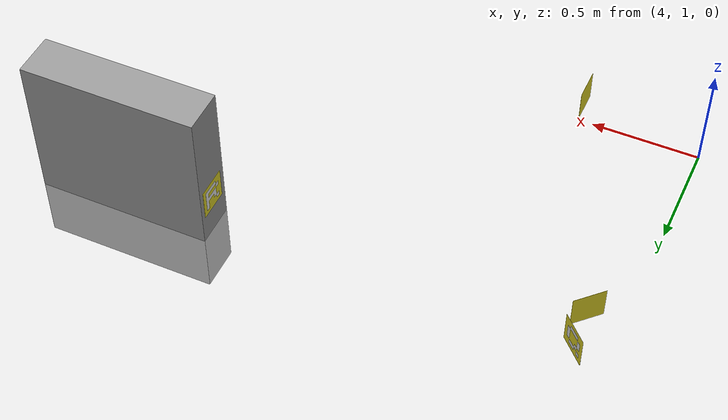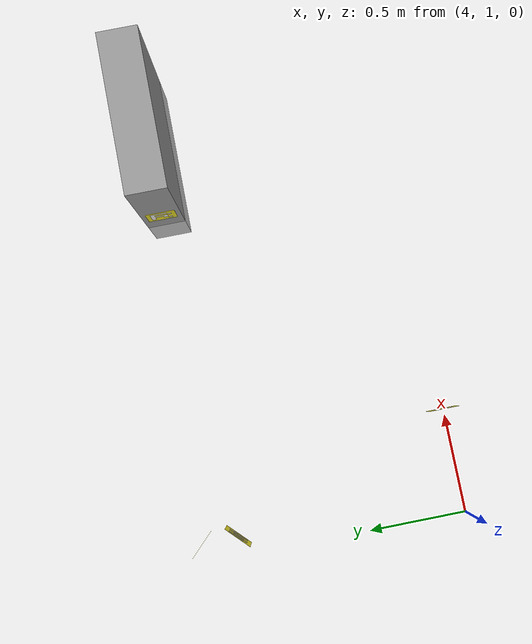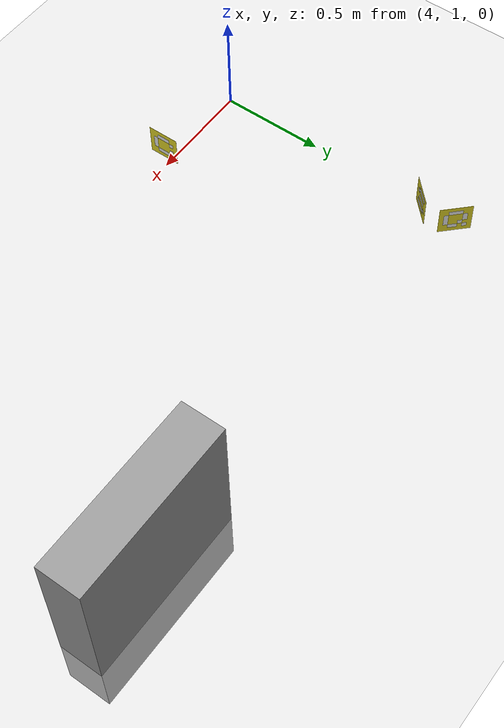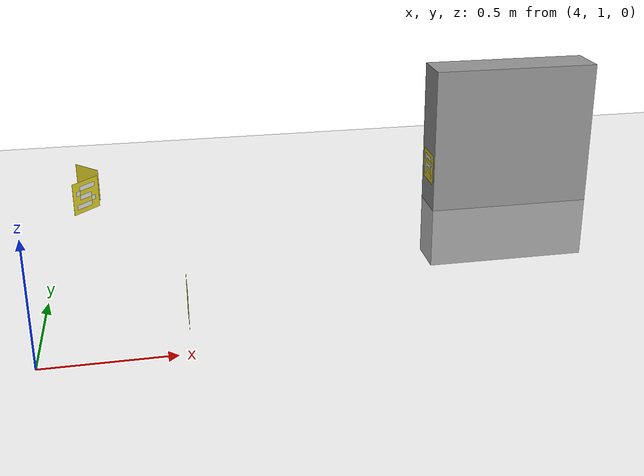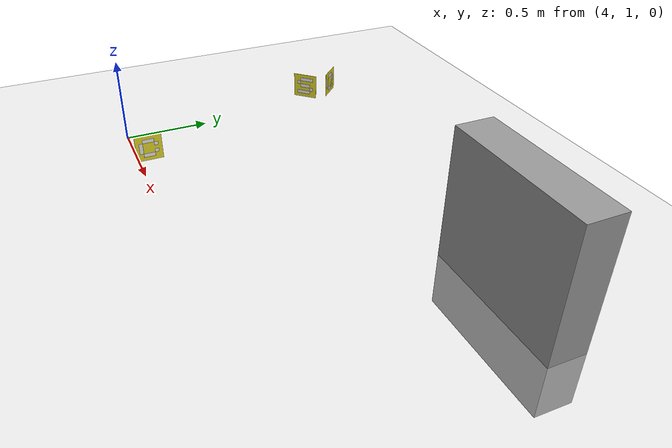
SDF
<sdf version="1.6">
 <world name="default">
  <model name="ground_plane">
   <static>1</static>
   <link name="link">
    <collision name="collision">
     <geometry><plane><normal>0 0 1</normal><size>100 100</size></plane></geometry>
     <surface><friction><ode><mu>100</mu><mu2>50</mu2></ode></friction></surface>
    </collision>
    <visual name="visual">
     <cast_shadows>0</cast_shadows>
     <geometry><plane><normal>0 0 1</normal><size>100 100</size></plane></geometry>
     <material>
      <script><uri>file://media/materials/scripts/gazebo.material</uri><name>Gazebo/Gray</name></script>
     </material>
    </visual>
   </link>
  </model>
  <model name="Untitled3_clone">
   <pose>6.18 2.24 0 0 -0 0</pose>
   <link name="Wall_17">
    <collision name="Wall_17_Collision">
     <geometry><box><size>0.8 0.2 1</size></box></geometry>
     <pose>0 0 0.2 0 -0 0</pose>
    </collision>
    <visual name="Wall_17_Visual">
     <pose>0 0 0.2 0 -0 0</pose>
     <geometry><box><size>0.8 0.2 1</size></box></geometry>
     <material>
      <script><uri>file://media/materials/scripts/gazebo.material</uri><name>Gazebo/Gray</name></script>
      <ambient>1 1 1 1</ambient>
     </material>
     <meta><layer>0</layer></meta>
    </visual>
   </link>
   <static>1</static>
  </model>
  <model name="labal_C">
   <link name="base">
    <inertial>
     <pose>-0.001086 -0.000137 -0.001593 0 -0 0</pose>
     <mass>0.0137688</mass>
     <inertia>
      <ixx>2.44128e-05</ixx>
      <ixy>-9.16282e-09</ixy>
      <ixz>4.39336e-07</ixz>
      <iyy>2.60674e-05</iyy>
      <iyz>-1.55543e-08</iyz>
      <izz>4.38445e-05</izz>
     </inertia>
    </inertial>
    <collision name="base_collision">
     <geometry>
      <mesh><scale>1 1 1</scale><uri>/home/tdt/catkin_ws/src/RoboRTS/small_car/meshes/base.STL</uri></mesh>
     </geometry>
    </collision>
    <collision name="base_fixed_joint_lump__labal_C_collision_1">
     <pose>0 0 0 1.5708 -0 0</pose>
     <geometry>
      <mesh><scale>1 1 1</scale><uri>/home/tdt/catkin_ws/src/RoboRTS/small_car/meshes/labal_C.STL</uri></mesh>
     </geometry>
    </collision>
    <visual name="base_visual">
     <geometry>
      <mesh><scale>1 1 1</scale><uri>/home/tdt/catkin_ws/src/RoboRTS/small_car/meshes/base.STL</uri></mesh>
     </geometry>
     <material>
      <script><name>Gazebo/Yellow</name><uri>file://media/materials/scripts/gazebo.material</uri></script>
     </material>
    </visual>
    <visual name="base_fixed_joint_lump__labal_C_visual_1">
     <pose>0 0 0 1.5708 -0 0</pose>
     <geometry>
      <mesh><scale>1 1 1</scale><uri>/home/tdt/catkin_ws/src/RoboRTS/small_car/meshes/labal_C.STL</uri></mesh>
     </geometry>
     <material>
      <script><name>Gazebo/White</name><uri>file://media/materials/scripts/gazebo.material</uri></script>
     </material>
    </visual>
   </link>
   <pose>4.54 1.035 0.2 0 -0 1.57</pose>
   <static>1</static>
  </model>
  <model name="labal_S">
   <link name="base">
    <inertial>
     <pose>-0.001086 -0.000137 -0.001593 0 -0 0</pose>
     <mass>0.0137688</mass>
     <inertia>
      <ixx>2.44128e-05</ixx>
      <ixy>-9.16282e-09</ixy>
      <ixz>4.39336e-07</ixz>
      <iyy>2.60674e-05</iyy>
      <iyz>-1.55543e-08</iyz>
      <izz>4.38445e-05</izz>
     </inertia>
    </inertial>
    <collision name="base_collision">
     <geometry>
      <mesh><scale>1 1 1</scale><uri>/home/tdt/catkin_ws/src/RoboRTS/small_car/meshes/base.STL</uri></mesh>
     </geometry>
    </collision>
    <collision name="base_fixed_joint_lump__labal_S_collision_1">
     <pose>0 0 0 1.5708 -0 0</pose>
     <geometry>
      <mesh><scale>1 1 1</scale><uri>/home/tdt/catkin_ws/src/RoboRTS/small_car/meshes/labal_S.STL</uri></mesh>
     </geometry>
    </collision>
    <visual name="base_visual">
     <geometry>
      <mesh><scale>1 1 1</scale><uri>/home/tdt/catkin_ws/src/RoboRTS/small_car/meshes/base.STL</uri></mesh>
     </geometry>
     <material>
      <script><name>Gazebo/Yellow</name><uri>file://media/materials/scripts/gazebo.material</uri></script>
     </material>
    </visual>
    <visual name="base_fixed_joint_lump__labal_S_visual_1">
     <pose>0 0 0 1.5708 -0 0</pose>
     <geometry>
      <mesh><scale>1 1 1</scale><uri>/home/tdt/catkin_ws/src/RoboRTS/small_car/meshes/labal_S.STL</uri></mesh>
     </geometry>
     <material>
      <script><name>Gazebo/White</name><uri>file://media/materials/scripts/gazebo.material</uri></script>
     </material>
    </visual>
   </link>
   <pose>4.13 2.152 0.2 0 -0 0.785</pose>
   <static>1</static>
  </model>
  <model name="labal_Q">
   <link name="base">
    <inertial>
     <pose>-0.001086 -0.000137 -0.001593 0 -0 0</pose>
     <mass>0.0137688</mass>
     <inertia>
      <ixx>2.44128e-05</ixx>
      <ixy>-9.16282e-09</ixy>
      <ixz>4.39336e-07</ixz>
      <iyy>2.60674e-05</iyy>
      <iyz>-1.55543e-08</iyz>
      <izz>4.38445e-05</izz>
     </inertia>
    </inertial>
    <collision name="base_collision">
     <geometry>
      <mesh><scale>1 1 1</scale><uri>/home/tdt/catkin_ws/src/RoboRTS/small_car/meshes/base.STL</uri></mesh>
     </geometry>
    </collision>
    <collision name="base_fixed_joint_lump__labal_Q_collision_1">
     <pose>0 0 0 1.5708 -0 0</pose>
     <geometry>
      <mesh><scale>1 1 1</scale><uri>/home/tdt/catkin_ws/src/RoboRTS/small_car/meshes/labal_Q.STL</uri></mesh>
     </geometry>
    </collision>
    <visual name="base_visual">
     <geometry>
      <mesh><scale>1 1 1</scale><uri>/home/tdt/catkin_ws/src/RoboRTS/small_car/meshes/base.STL</uri></mesh>
     </geometry>
     <material>
      <script><name>Gazebo/Yellow</name><uri>file://media/materials/scripts/gazebo.material</uri></script>
     </material>
    </visual>
    <visual name="base_fixed_joint_lump__labal_Q_visual_1">
     <pose>0 0 0 1.5708 -0 0</pose>
     <geometry>
      <mesh><scale>1 1 1</scale><uri>/home/tdt/catkin_ws/src/RoboRTS/small_car/meshes/labal_Q.STL</uri></mesh>
     </geometry>
     <material>
      <script><name>Gazebo/White</name><uri>file://media/materials/scripts/gazebo.material</uri></script>
     </material>
    </visual>
   </link>
   <pose>4.13 2.328 0.2 0 -0 2.355</pose>
   <static>1</static>
  </model>
  <model name="labal_R">
   <link name="base">
    <inertial>
     <pose>-0.001086 -0.000137 -0.001593 0 -0 0</pose>
     <mass>0.0137688</mass>
     <inertia>
      <ixx>2.44128e-05</ixx>
      <ixy>-9.16282e-09</ixy>
      <ixz>4.39336e-07</ixz>
      <iyy>2.60674e-05</iyy>
      <iyz>-1.55543e-08</iyz>
      <izz>4.38445e-05</izz>
     </inertia>
    </inertial>
    <collision name="base_collision">
     <geometry>
      <mesh><scale>1 1 1</scale><uri>/home/tdt/catkin_ws/src/RoboRTS/small_car/meshes/base.STL</uri></mesh>
     </geometry>
    </collision>
    <collision name="base_fixed_joint_lump__labal_R_collision_1">
     <pose>0 0 0 1.5708 -0 0</pose>
     <geometry>
      <mesh><scale>1 1 1</scale><uri>/home/tdt/catkin_ws/src/RoboRTS/small_car/meshes/labal_R.STL</uri></mesh>
     </geometry>
    </collision>
    <visual name="base_visual">
     <geometry>
      <mesh><scale>1 1 1</scale><uri>/home/tdt/catkin_ws/src/RoboRTS/small_car/meshes/base.STL</uri></mesh>
     </geometry>
     <material>
      <script><name>Gazebo/Yellow</name><uri>file://media/materials/scripts/gazebo.material</uri></script>
     </material>
    </visual>
    <visual name="base_fixed_joint_lump__labal_R_visual_1">
     <pose>0 0 0 1.5708 -0 0</pose>
     <geometry>
      <mesh><scale>1 1 1</scale><uri>/home/tdt/catkin_ws/src/RoboRTS/small_car/meshes/labal_R.STL</uri></mesh>
     </geometry>
     <material>
      <script><name>Gazebo/White</name><uri>file://media/materials/scripts/gazebo.material</uri></script>
     </material>
    </visual>
   </link>
   <pose>5.78 2.24 0.2 0 0 -1.57</pose>
   <static>1</static>
  </model>
 </world>
</sdf>
